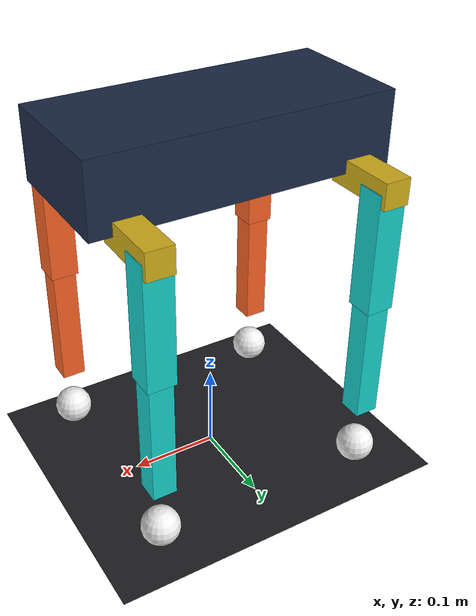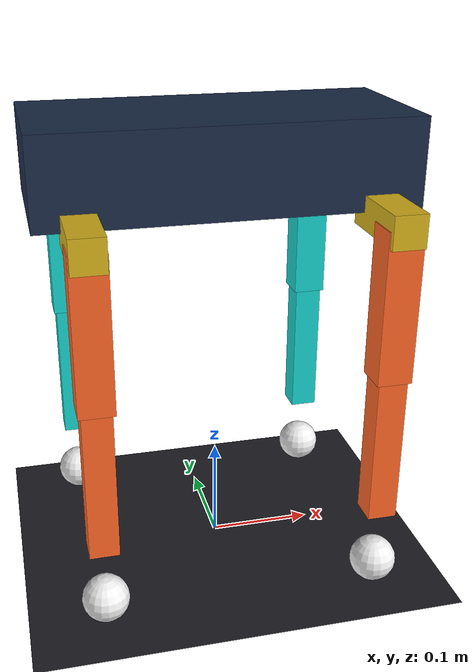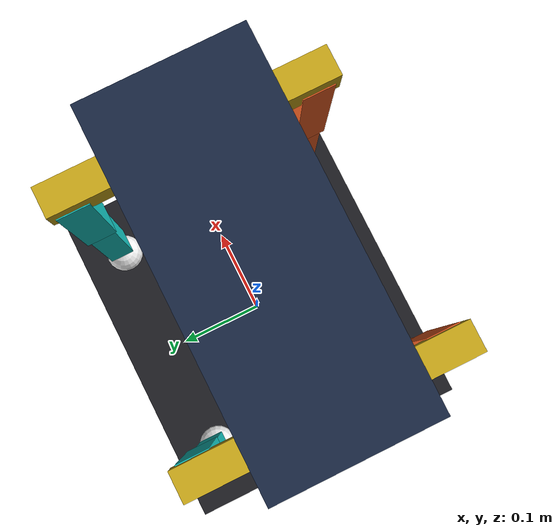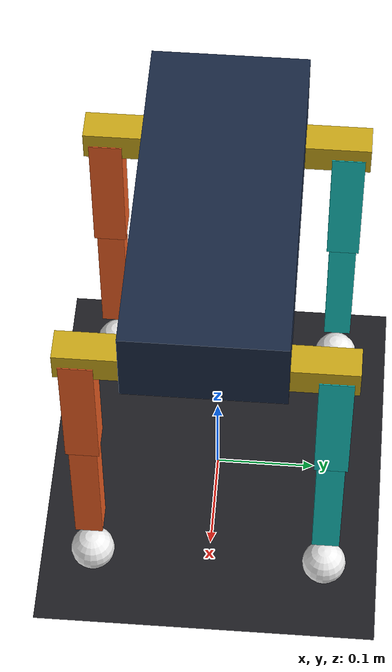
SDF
<?xml version="1.0"?>
<sdf version="1.10"><world name="aura_quadruped_world">
  <gravity>0 0 -9.81</gravity>
  <physics name="dart" type="dart"><max_step_size>0.001</max_step_size><real_time_factor>1</real_time_factor></physics>
  <plugin filename="gz-sim-physics-system" name="gz::sim::systems::Physics"/>
  <plugin filename="gz-sim-scene-broadcaster-system" name="gz::sim::systems::SceneBroadcaster"/>
  <plugin filename="gz-sim-user-commands-system" name="gz::sim::systems::UserCommands"/>
  <plugin filename="gz-sim-sensors-system" name="gz::sim::systems::Sensors"><render_engine>ogre2</render_engine></plugin>
  <light type="directional" name="sun"><pose>0 0 10 0 0 0</pose><cast_shadows>true</cast_shadows><direction>-0.4 0.3 -0.85</direction></light>
  <model name="ground"><static>true</static><link name="link"><collision name="collision"><geometry><plane><normal>0 0 1</normal><size>20 20</size></plane></geometry><surface><friction><ode><mu>1.2</mu><mu2>1.2</mu2></ode></friction></surface></collision><visual name="visual"><geometry><plane><normal>0 0 1</normal><size>20 20</size></plane></geometry><material><diffuse>0.12 0.12 0.14 1</diffuse></material></visual></link></model>
  <model name="aura"><link name="body"><pose>0 0 0.400 0 0 0</pose><inertial><mass>2.0</mass><inertia>
      <ixx>0.0024</ixx><iyy>0.0024</iyy><izz>0.0024</izz>
      <ixy>0</ixy><ixz>0</ixz><iyz>0</iyz>
    </inertia></inertial>
      <visual name="visual"><geometry><box><size>0.338 0.150 0.080</size></box></geometry>
        <material><diffuse>0.10 0.16 0.27 1</diffuse><ambient>0.10 0.16 0.27 1</ambient></material></visual>
      <collision name="collision"><geometry><box><size>0.338 0.150 0.080</size></box></geometry>
        <surface><friction><ode><mu>0.85</mu><mu2>0.85</mu2></ode></friction></surface></collision>
    </link>
<link name="lf_abduction_link"><pose>0.13 0.096 0.36 0 0 0</pose><inertial><mass>0.1</mass><inertia>
      <ixx>0.00011999999999999999</ixx><iyy>0.00011999999999999999</iyy><izz>0.00011999999999999999</izz>
      <ixy>0</ixy><ixz>0</ixz><iyz>0</iyz>
    </inertia></inertial>
      <visual name="visual"><geometry><box><size>0.030 0.084 0.030</size></box></geometry>
        <material><diffuse>0.82 0.68 0.10 1</diffuse><ambient>0.82 0.68 0.10 1</ambient></material></visual>
      <collision name="collision"><geometry><box><size>0.030 0.084 0.030</size></box></geometry>
        <surface><friction><ode><mu>0.85</mu><mu2>0.85</mu2></ode></friction></surface></collision>
    </link>
<link name="lf_upper_link"><pose>0.13 0.11699999999999999 0.29 0 0 0</pose><inertial><mass>0.19</mass><inertia>
      <ixx>0.00022799999999999999</ixx><iyy>0.00022799999999999999</iyy><izz>0.00022799999999999999</izz>
      <ixy>0</ixy><ixz>0</ixz><iyz>0</iyz>
    </inertia></inertial>
      <visual name="visual"><geometry><box><size>0.032 0.032 0.140</size></box></geometry>
        <material><diffuse>0.08 0.80 0.78 1</diffuse><ambient>0.08 0.80 0.78 1</ambient></material></visual>
      <collision name="collision"><geometry><box><size>0.032 0.032 0.140</size></box></geometry>
        <surface><friction><ode><mu>0.85</mu><mu2>0.85</mu2></ode></friction></surface></collision>
    </link>
<link name="lf_lower_link"><pose>0.13 0.11699999999999999 0.14999999999999997 0 0 0</pose><inertial><mass>0.13</mass><inertia>
      <ixx>0.000156</ixx><iyy>0.000156</iyy><izz>0.000156</izz>
      <ixy>0</ixy><ixz>0</ixz><iyz>0</iyz>
    </inertia></inertial>
      <visual name="visual"><geometry><box><size>0.027 0.027 0.140</size></box></geometry>
        <material><diffuse>0.08 0.80 0.78 1</diffuse><ambient>0.08 0.80 0.78 1</ambient></material></visual>
      <collision name="collision"><geometry><box><size>0.027 0.027 0.140</size></box></geometry>
        <surface><friction><ode><mu>0.85</mu><mu2>0.85</mu2></ode></friction></surface></collision>
    </link>
<link name="lf_foot"><pose>0.13 0.11699999999999999 0.025 0 0 0</pose><inertial><mass>0.035</mass><inertia>
      <ixx>4.2e-05</ixx><iyy>4.2e-05</iyy><izz>4.2e-05</izz>
      <ixy>0</ixy><ixz>0</ixz><iyz>0</iyz>
    </inertia></inertial>
      <visual name="visual"><geometry><sphere><radius>0.022</radius></sphere></geometry>
      <material><diffuse>0.95 0.95 0.95 1</diffuse></material></visual>
      <collision name="collision"><geometry><sphere><radius>0.022</radius></sphere></geometry>
      <surface><friction><ode><mu>1.2</mu><mu2>1.2</mu2></ode></friction></surface></collision></link>
<joint name="lf_abduction" type="revolute"><pose>0.13 0.075 0.36 0 0 0</pose>
      <parent>body</parent><child>lf_abduction_link</child><axis><xyz>1 0 0</xyz>
      <limit><lower>-0.78</lower><upper>0.78</upper><effort>18</effort><velocity>8</velocity></limit>
      <dynamics><damping>0.12</damping><friction>0.02</friction></dynamics></axis></joint>
<joint name="lf_hip" type="revolute"><pose>0.13 0.11699999999999999 0.36 0 0 0</pose>
      <parent>lf_abduction_link</parent><child>lf_upper_link</child><axis><xyz>0 1 0</xyz>
      <limit><lower>-1.75</lower><upper>1.57</upper><effort>18</effort><velocity>8</velocity></limit>
      <dynamics><damping>0.12</damping><friction>0.02</friction></dynamics></axis></joint>
<joint name="lf_knee" type="revolute"><pose>0.13 0.11699999999999999 0.21999999999999997 0 0 0</pose>
      <parent>lf_upper_link</parent><child>lf_lower_link</child><axis><xyz>0 1 0</xyz>
      <limit><lower>-2.8</lower><upper>0.2</upper><effort>18</effort><velocity>8</velocity></limit>
      <dynamics><damping>0.12</damping><friction>0.02</friction></dynamics></axis></joint>
<joint name="lf_foot_fixed" type="fixed">
      <pose>0.13 0.11699999999999999 0.07999999999999996 0 0 0</pose>
      <parent>lf_lower_link</parent><child>lf_foot</child></joint>
<plugin filename="gz-sim-joint-position-controller-system"
      name="gz::sim::systems::JointPositionController">
      <joint_name>lf_abduction</joint_name><topic>/aura/lf_abduction/cmd_pos</topic>
      <p_gain>65</p_gain><i_gain>0.02</i_gain><d_gain>3.5</d_gain>
      <i_max>0.3</i_max><i_min>-0.3</i_min><cmd_max>18</cmd_max><cmd_min>-18</cmd_min>
    </plugin>
<plugin filename="gz-sim-joint-position-controller-system"
      name="gz::sim::systems::JointPositionController">
      <joint_name>lf_hip</joint_name><topic>/aura/lf_hip/cmd_pos</topic>
      <p_gain>65</p_gain><i_gain>0.02</i_gain><d_gain>3.5</d_gain>
      <i_max>0.3</i_max><i_min>-0.3</i_min><cmd_max>18</cmd_max><cmd_min>-18</cmd_min>
    </plugin>
<plugin filename="gz-sim-joint-position-controller-system"
      name="gz::sim::systems::JointPositionController">
      <joint_name>lf_knee</joint_name><topic>/aura/lf_knee/cmd_pos</topic>
      <p_gain>65</p_gain><i_gain>0.02</i_gain><d_gain>3.5</d_gain>
      <i_max>0.3</i_max><i_min>-0.3</i_min><cmd_max>18</cmd_max><cmd_min>-18</cmd_min>
    </plugin>
<link name="rf_abduction_link"><pose>0.13 -0.096 0.36 0 0 0</pose><inertial><mass>0.1</mass><inertia>
      <ixx>0.00011999999999999999</ixx><iyy>0.00011999999999999999</iyy><izz>0.00011999999999999999</izz>
      <ixy>0</ixy><ixz>0</ixz><iyz>0</iyz>
    </inertia></inertial>
      <visual name="visual"><geometry><box><size>0.030 0.084 0.030</size></box></geometry>
        <material><diffuse>0.82 0.68 0.10 1</diffuse><ambient>0.82 0.68 0.10 1</ambient></material></visual>
      <collision name="collision"><geometry><box><size>0.030 0.084 0.030</size></box></geometry>
        <surface><friction><ode><mu>0.85</mu><mu2>0.85</mu2></ode></friction></surface></collision>
    </link>
<link name="rf_upper_link"><pose>0.13 -0.11699999999999999 0.29 0 0 0</pose><inertial><mass>0.19</mass><inertia>
      <ixx>0.00022799999999999999</ixx><iyy>0.00022799999999999999</iyy><izz>0.00022799999999999999</izz>
      <ixy>0</ixy><ixz>0</ixz><iyz>0</iyz>
    </inertia></inertial>
      <visual name="visual"><geometry><box><size>0.032 0.032 0.140</size></box></geometry>
        <material><diffuse>0.96 0.38 0.14 1</diffuse><ambient>0.96 0.38 0.14 1</ambient></material></visual>
      <collision name="collision"><geometry><box><size>0.032 0.032 0.140</size></box></geometry>
        <surface><friction><ode><mu>0.85</mu><mu2>0.85</mu2></ode></friction></surface></collision>
    </link>
<link name="rf_lower_link"><pose>0.13 -0.11699999999999999 0.14999999999999997 0 0 0</pose><inertial><mass>0.13</mass><inertia>
      <ixx>0.000156</ixx><iyy>0.000156</iyy><izz>0.000156</izz>
      <ixy>0</ixy><ixz>0</ixz><iyz>0</iyz>
    </inertia></inertial>
      <visual name="visual"><geometry><box><size>0.027 0.027 0.140</size></box></geometry>
        <material><diffuse>0.96 0.38 0.14 1</diffuse><ambient>0.96 0.38 0.14 1</ambient></material></visual>
      <collision name="collision"><geometry><box><size>0.027 0.027 0.140</size></box></geometry>
        <surface><friction><ode><mu>0.85</mu><mu2>0.85</mu2></ode></friction></surface></collision>
    </link>
<link name="rf_foot"><pose>0.13 -0.11699999999999999 0.025 0 0 0</pose><inertial><mass>0.035</mass><inertia>
      <ixx>4.2e-05</ixx><iyy>4.2e-05</iyy><izz>4.2e-05</izz>
      <ixy>0</ixy><ixz>0</ixz><iyz>0</iyz>
    </inertia></inertial>
      <visual name="visual"><geometry><sphere><radius>0.022</radius></sphere></geometry>
      <material><diffuse>0.95 0.95 0.95 1</diffuse></material></visual>
      <collision name="collision"><geometry><sphere><radius>0.022</radius></sphere></geometry>
      <surface><friction><ode><mu>1.2</mu><mu2>1.2</mu2></ode></friction></surface></collision></link>
<joint name="rf_abduction" type="revolute"><pose>0.13 -0.075 0.36 0 0 0</pose>
      <parent>body</parent><child>rf_abduction_link</child><axis><xyz>1 0 0</xyz>
      <limit><lower>-0.78</lower><upper>0.78</upper><effort>18</effort><velocity>8</velocity></limit>
      <dynamics><damping>0.12</damping><friction>0.02</friction></dynamics></axis></joint>
<joint name="rf_hip" type="revolute"><pose>0.13 -0.11699999999999999 0.36 0 0 0</pose>
      <parent>rf_abduction_link</parent><child>rf_upper_link</child><axis><xyz>0 1 0</xyz>
      <limit><lower>-1.75</lower><upper>1.57</upper><effort>18</effort><velocity>8</velocity></limit>
      <dynamics><damping>0.12</damping><friction>0.02</friction></dynamics></axis></joint>
<joint name="rf_knee" type="revolute"><pose>0.13 -0.11699999999999999 0.21999999999999997 0 0 0</pose>
      <parent>rf_upper_link</parent><child>rf_lower_link</child><axis><xyz>0 1 0</xyz>
      <limit><lower>-2.8</lower><upper>0.2</upper><effort>18</effort><velocity>8</velocity></limit>
      <dynamics><damping>0.12</damping><friction>0.02</friction></dynamics></axis></joint>
<joint name="rf_foot_fixed" type="fixed">
      <pose>0.13 -0.11699999999999999 0.07999999999999996 0 0 0</pose>
      <parent>rf_lower_link</parent><child>rf_foot</child></joint>
<plugin filename="gz-sim-joint-position-controller-system"
      name="gz::sim::systems::JointPositionController">
      <joint_name>rf_abduction</joint_name><topic>/aura/rf_abduction/cmd_pos</topic>
      <p_gain>65</p_gain><i_gain>0.02</i_gain><d_gain>3.5</d_gain>
      <i_max>0.3</i_max><i_min>-0.3</i_min><cmd_max>18</cmd_max><cmd_min>-18</cmd_min>
    </plugin>
<plugin filename="gz-sim-joint-position-controller-system"
      name="gz::sim::systems::JointPositionController">
      <joint_name>rf_hip</joint_name><topic>/aura/rf_hip/cmd_pos</topic>
      <p_gain>65</p_gain><i_gain>0.02</i_gain><d_gain>3.5</d_gain>
      <i_max>0.3</i_max><i_min>-0.3</i_min><cmd_max>18</cmd_max><cmd_min>-18</cmd_min>
    </plugin>
<plugin filename="gz-sim-joint-position-controller-system"
      name="gz::sim::systems::JointPositionController">
      <joint_name>rf_knee</joint_name><topic>/aura/rf_knee/cmd_pos</topic>
      <p_gain>65</p_gain><i_gain>0.02</i_gain><d_gain>3.5</d_gain>
      <i_max>0.3</i_max><i_min>-0.3</i_min><cmd_max>18</cmd_max><cmd_min>-18</cmd_min>
    </plugin>
<link name="lr_abduction_link"><pose>-0.13 0.096 0.36 0 0 0</pose><inertial><mass>0.1</mass><inertia>
      <ixx>0.00011999999999999999</ixx><iyy>0.00011999999999999999</iyy><izz>0.00011999999999999999</izz>
      <ixy>0</ixy><ixz>0</ixz><iyz>0</iyz>
    </inertia></inertial>
      <visual name="visual"><geometry><box><size>0.030 0.084 0.030</size></box></geometry>
        <material><diffuse>0.82 0.68 0.10 1</diffuse><ambient>0.82 0.68 0.10 1</ambient></material></visual>
      <collision name="collision"><geometry><box><size>0.030 0.084 0.030</size></box></geometry>
        <surface><friction><ode><mu>0.85</mu><mu2>0.85</mu2></ode></friction></surface></collision>
    </link>
<link name="lr_upper_link"><pose>-0.13 0.11699999999999999 0.29 0 0 0</pose><inertial><mass>0.19</mass><inertia>
      <ixx>0.00022799999999999999</ixx><iyy>0.00022799999999999999</iyy><izz>0.00022799999999999999</izz>
      <ixy>0</ixy><ixz>0</ixz><iyz>0</iyz>
    </inertia></inertial>
      <visual name="visual"><geometry><box><size>0.032 0.032 0.140</size></box></geometry>
        <material><diffuse>0.08 0.80 0.78 1</diffuse><ambient>0.08 0.80 0.78 1</ambient></material></visual>
      <collision name="collision"><geometry><box><size>0.032 0.032 0.140</size></box></geometry>
        <surface><friction><ode><mu>0.85</mu><mu2>0.85</mu2></ode></friction></surface></collision>
    </link>
<link name="lr_lower_link"><pose>-0.13 0.11699999999999999 0.14999999999999997 0 0 0</pose><inertial><mass>0.13</mass><inertia>
      <ixx>0.000156</ixx><iyy>0.000156</iyy><izz>0.000156</izz>
      <ixy>0</ixy><ixz>0</ixz><iyz>0</iyz>
    </inertia></inertial>
      <visual name="visual"><geometry><box><size>0.027 0.027 0.140</size></box></geometry>
        <material><diffuse>0.08 0.80 0.78 1</diffuse><ambient>0.08 0.80 0.78 1</ambient></material></visual>
      <collision name="collision"><geometry><box><size>0.027 0.027 0.140</size></box></geometry>
        <surface><friction><ode><mu>0.85</mu><mu2>0.85</mu2></ode></friction></surface></collision>
    </link>
<link name="lr_foot"><pose>-0.13 0.11699999999999999 0.025 0 0 0</pose><inertial><mass>0.035</mass><inertia>
      <ixx>4.2e-05</ixx><iyy>4.2e-05</iyy><izz>4.2e-05</izz>
      <ixy>0</ixy><ixz>0</ixz><iyz>0</iyz>
    </inertia></inertial>
      <visual name="visual"><geometry><sphere><radius>0.022</radius></sphere></geometry>
      <material><diffuse>0.95 0.95 0.95 1</diffuse></material></visual>
      <collision name="collision"><geometry><sphere><radius>0.022</radius></sphere></geometry>
      <surface><friction><ode><mu>1.2</mu><mu2>1.2</mu2></ode></friction></surface></collision></link>
<joint name="lr_abduction" type="revolute"><pose>-0.13 0.075 0.36 0 0 0</pose>
      <parent>body</parent><child>lr_abduction_link</child><axis><xyz>1 0 0</xyz>
      <limit><lower>-0.78</lower><upper>0.78</upper><effort>18</effort><velocity>8</velocity></limit>
      <dynamics><damping>0.12</damping><friction>0.02</friction></dynamics></axis></joint>
<joint name="lr_hip" type="revolute"><pose>-0.13 0.11699999999999999 0.36 0 0 0</pose>
      <parent>lr_abduction_link</parent><child>lr_upper_link</child><axis><xyz>0 1 0</xyz>
      <limit><lower>-1.75</lower><upper>1.57</upper><effort>18</effort><velocity>8</velocity></limit>
      <dynamics><damping>0.12</damping><friction>0.02</friction></dynamics></axis></joint>
<joint name="lr_knee" type="revolute"><pose>-0.13 0.11699999999999999 0.21999999999999997 0 0 0</pose>
      <parent>lr_upper_link</parent><child>lr_lower_link</child><axis><xyz>0 1 0</xyz>
      <limit><lower>-2.8</lower><upper>0.2</upper><effort>18</effort><velocity>8</velocity></limit>
      <dynamics><damping>0.12</damping><friction>0.02</friction></dynamics></axis></joint>
<joint name="lr_foot_fixed" type="fixed">
      <pose>-0.13 0.11699999999999999 0.07999999999999996 0 0 0</pose>
      <parent>lr_lower_link</parent><child>lr_foot</child></joint>
<plugin filename="gz-sim-joint-position-controller-system"
      name="gz::sim::systems::JointPositionController">
      <joint_name>lr_abduction</joint_name><topic>/aura/lr_abduction/cmd_pos</topic>
      <p_gain>65</p_gain><i_gain>0.02</i_gain><d_gain>3.5</d_gain>
      <i_max>0.3</i_max><i_min>-0.3</i_min><cmd_max>18</cmd_max><cmd_min>-18</cmd_min>
    </plugin>
<plugin filename="gz-sim-joint-position-controller-system"
      name="gz::sim::systems::JointPositionController">
      <joint_name>lr_hip</joint_name><topic>/aura/lr_hip/cmd_pos</topic>
      <p_gain>65</p_gain><i_gain>0.02</i_gain><d_gain>3.5</d_gain>
      <i_max>0.3</i_max><i_min>-0.3</i_min><cmd_max>18</cmd_max><cmd_min>-18</cmd_min>
    </plugin>
<plugin filename="gz-sim-joint-position-controller-system"
      name="gz::sim::systems::JointPositionController">
      <joint_name>lr_knee</joint_name><topic>/aura/lr_knee/cmd_pos</topic>
      <p_gain>65</p_gain><i_gain>0.02</i_gain><d_gain>3.5</d_gain>
      <i_max>0.3</i_max><i_min>-0.3</i_min><cmd_max>18</cmd_max><cmd_min>-18</cmd_min>
    </plugin>
<link name="rr_abduction_link"><pose>-0.13 -0.096 0.36 0 0 0</pose><inertial><mass>0.1</mass><inertia>
      <ixx>0.00011999999999999999</ixx><iyy>0.00011999999999999999</iyy><izz>0.00011999999999999999</izz>
      <ixy>0</ixy><ixz>0</ixz><iyz>0</iyz>
    </inertia></inertial>
      <visual name="visual"><geometry><box><size>0.030 0.084 0.030</size></box></geometry>
        <material><diffuse>0.82 0.68 0.10 1</diffuse><ambient>0.82 0.68 0.10 1</ambient></material></visual>
      <collision name="collision"><geometry><box><size>0.030 0.084 0.030</size></box></geometry>
        <surface><friction><ode><mu>0.85</mu><mu2>0.85</mu2></ode></friction></surface></collision>
    </link>
<link name="rr_upper_link"><pose>-0.13 -0.11699999999999999 0.29 0 0 0</pose><inertial><mass>0.19</mass><inertia>
      <ixx>0.00022799999999999999</ixx><iyy>0.00022799999999999999</iyy><izz>0.00022799999999999999</izz>
      <ixy>0</ixy><ixz>0</ixz><iyz>0</iyz>
    </inertia></inertial>
      <visual name="visual"><geometry><box><size>0.032 0.032 0.140</size></box></geometry>
        <material><diffuse>0.96 0.38 0.14 1</diffuse><ambient>0.96 0.38 0.14 1</ambient></material></visual>
      <collision name="collision"><geometry><box><size>0.032 0.032 0.140</size></box></geometry>
        <surface><friction><ode><mu>0.85</mu><mu2>0.85</mu2></ode></friction></surface></collision>
    </link>
<link name="rr_lower_link"><pose>-0.13 -0.11699999999999999 0.14999999999999997 0 0 0</pose><inertial><mass>0.13</mass><inertia>
      <ixx>0.000156</ixx><iyy>0.000156</iyy><izz>0.000156</izz>
      <ixy>0</ixy><ixz>0</ixz><iyz>0</iyz>
    </inertia></inertial>
      <visual name="visual"><geometry><box><size>0.027 0.027 0.140</size></box></geometry>
        <material><diffuse>0.96 0.38 0.14 1</diffuse><ambient>0.96 0.38 0.14 1</ambient></material></visual>
      <collision name="collision"><geometry><box><size>0.027 0.027 0.140</size></box></geometry>
        <surface><friction><ode><mu>0.85</mu><mu2>0.85</mu2></ode></friction></surface></collision>
    </link>
<link name="rr_foot"><pose>-0.13 -0.11699999999999999 0.025 0 0 0</pose><inertial><mass>0.035</mass><inertia>
      <ixx>4.2e-05</ixx><iyy>4.2e-05</iyy><izz>4.2e-05</izz>
      <ixy>0</ixy><ixz>0</ixz><iyz>0</iyz>
    </inertia></inertial>
      <visual name="visual"><geometry><sphere><radius>0.022</radius></sphere></geometry>
      <material><diffuse>0.95 0.95 0.95 1</diffuse></material></visual>
      <collision name="collision"><geometry><sphere><radius>0.022</radius></sphere></geometry>
      <surface><friction><ode><mu>1.2</mu><mu2>1.2</mu2></ode></friction></surface></collision></link>
<joint name="rr_abduction" type="revolute"><pose>-0.13 -0.075 0.36 0 0 0</pose>
      <parent>body</parent><child>rr_abduction_link</child><axis><xyz>1 0 0</xyz>
      <limit><lower>-0.78</lower><upper>0.78</upper><effort>18</effort><velocity>8</velocity></limit>
      <dynamics><damping>0.12</damping><friction>0.02</friction></dynamics></axis></joint>
<joint name="rr_hip" type="revolute"><pose>-0.13 -0.11699999999999999 0.36 0 0 0</pose>
      <parent>rr_abduction_link</parent><child>rr_upper_link</child><axis><xyz>0 1 0</xyz>
      <limit><lower>-1.75</lower><upper>1.57</upper><effort>18</effort><velocity>8</velocity></limit>
      <dynamics><damping>0.12</damping><friction>0.02</friction></dynamics></axis></joint>
<joint name="rr_knee" type="revolute"><pose>-0.13 -0.11699999999999999 0.21999999999999997 0 0 0</pose>
      <parent>rr_upper_link</parent><child>rr_lower_link</child><axis><xyz>0 1 0</xyz>
      <limit><lower>-2.8</lower><upper>0.2</upper><effort>18</effort><velocity>8</velocity></limit>
      <dynamics><damping>0.12</damping><friction>0.02</friction></dynamics></axis></joint>
<joint name="rr_foot_fixed" type="fixed">
      <pose>-0.13 -0.11699999999999999 0.07999999999999996 0 0 0</pose>
      <parent>rr_lower_link</parent><child>rr_foot</child></joint>
<plugin filename="gz-sim-joint-position-controller-system"
      name="gz::sim::systems::JointPositionController">
      <joint_name>rr_abduction</joint_name><topic>/aura/rr_abduction/cmd_pos</topic>
      <p_gain>65</p_gain><i_gain>0.02</i_gain><d_gain>3.5</d_gain>
      <i_max>0.3</i_max><i_min>-0.3</i_min><cmd_max>18</cmd_max><cmd_min>-18</cmd_min>
    </plugin>
<plugin filename="gz-sim-joint-position-controller-system"
      name="gz::sim::systems::JointPositionController">
      <joint_name>rr_hip</joint_name><topic>/aura/rr_hip/cmd_pos</topic>
      <p_gain>65</p_gain><i_gain>0.02</i_gain><d_gain>3.5</d_gain>
      <i_max>0.3</i_max><i_min>-0.3</i_min><cmd_max>18</cmd_max><cmd_min>-18</cmd_min>
    </plugin>
<plugin filename="gz-sim-joint-position-controller-system"
      name="gz::sim::systems::JointPositionController">
      <joint_name>rr_knee</joint_name><topic>/aura/rr_knee/cmd_pos</topic>
      <p_gain>65</p_gain><i_gain>0.02</i_gain><d_gain>3.5</d_gain>
      <i_max>0.3</i_max><i_min>-0.3</i_min><cmd_max>18</cmd_max><cmd_min>-18</cmd_min>
    </plugin>
    <plugin filename="gz-sim-joint-state-publisher-system" name="gz::sim::systems::JointStatePublisher"><topic>/aura/joint_states</topic></plugin>
  </model>
</world></sdf>
